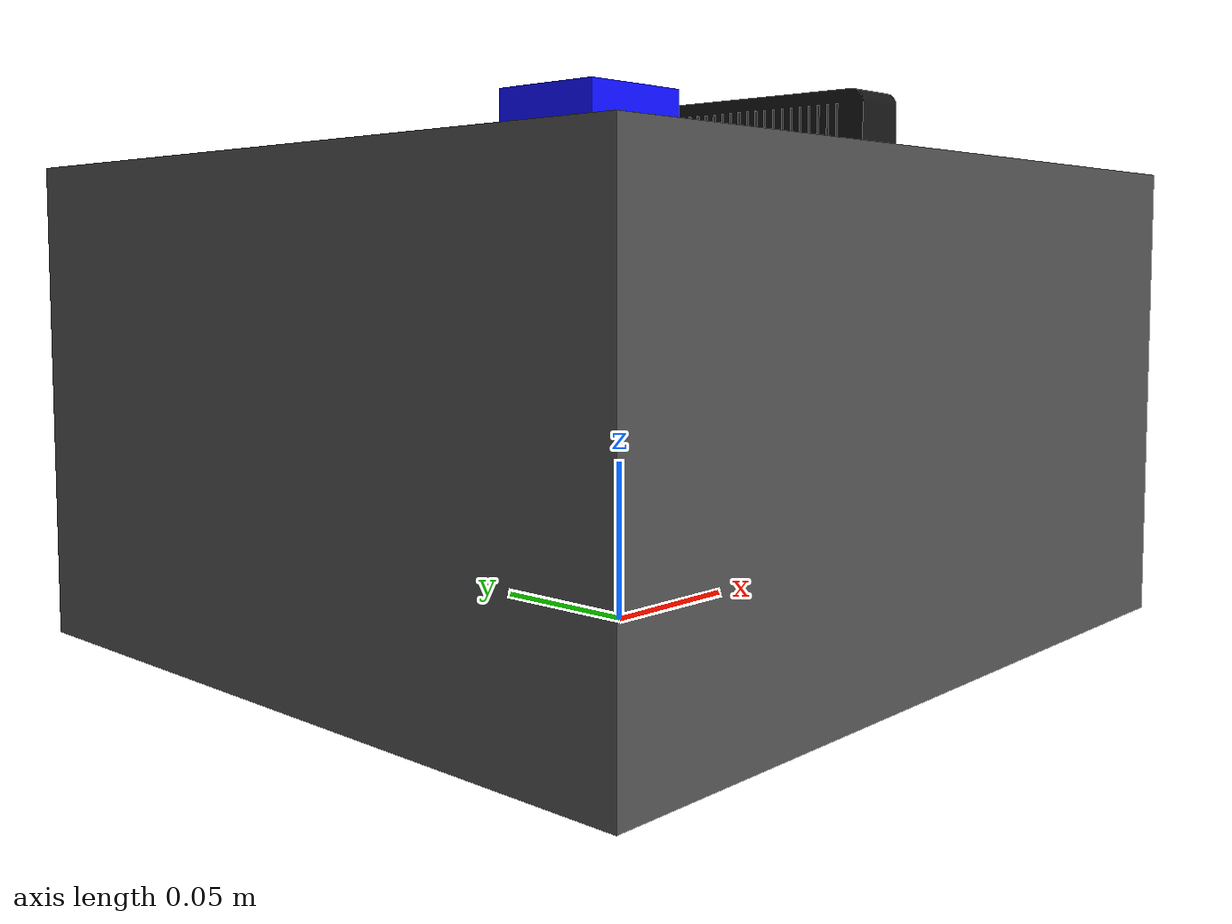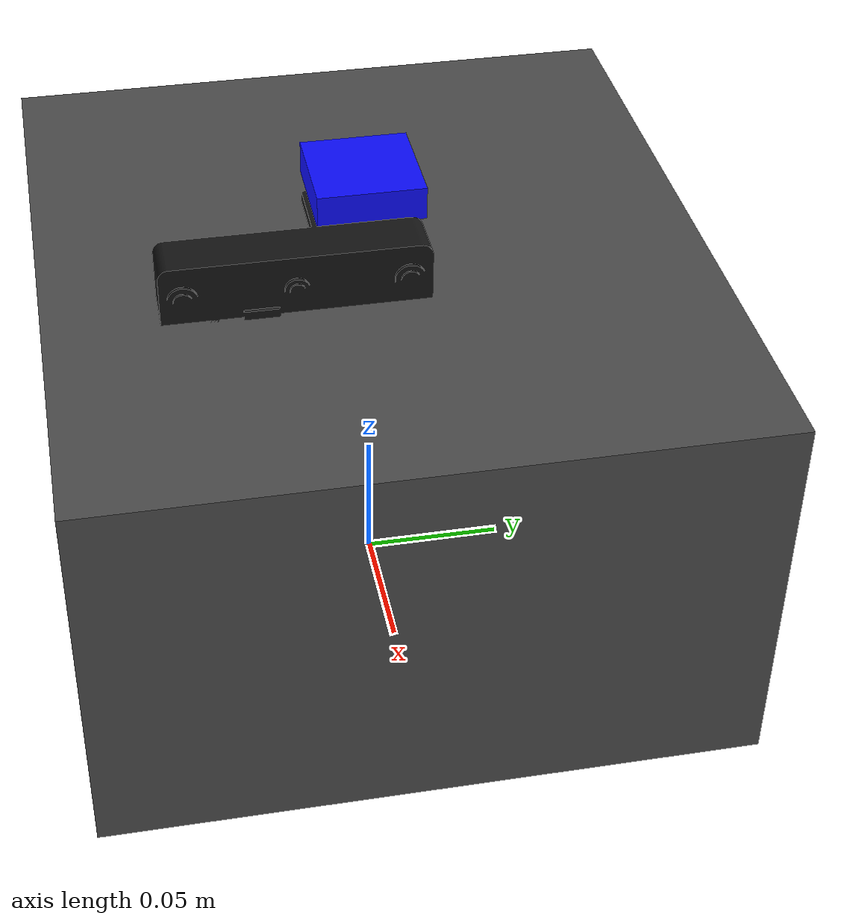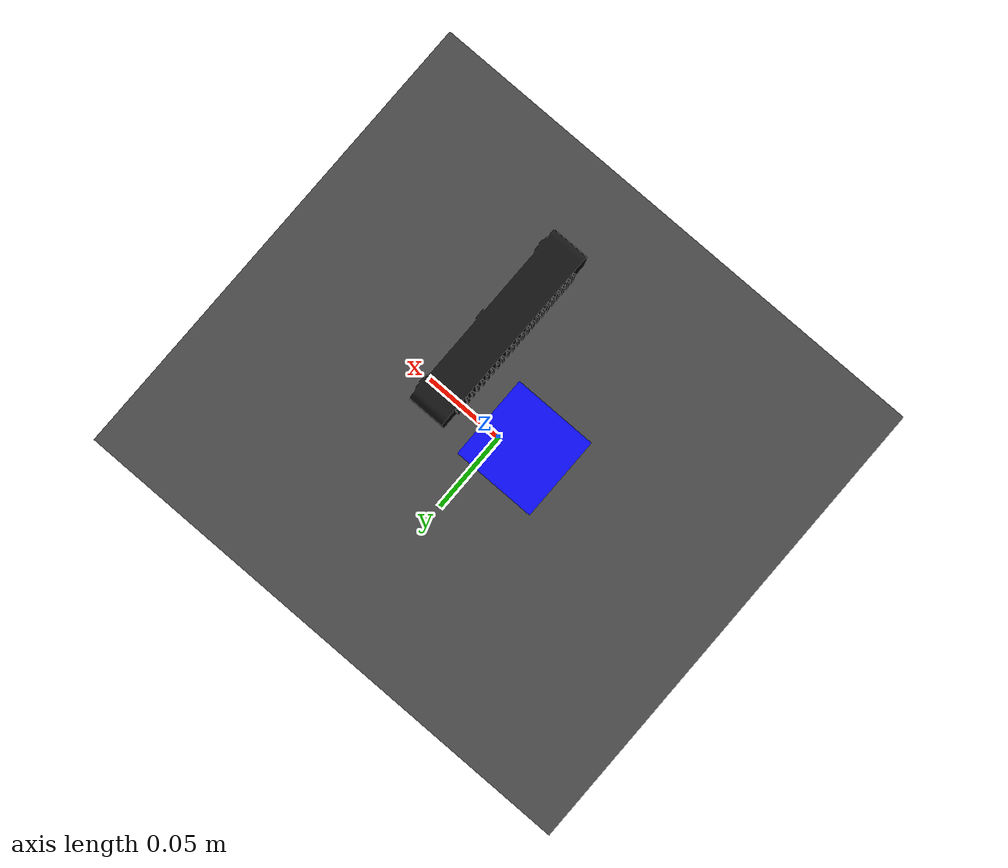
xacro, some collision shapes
<?xml version="1.0"?>
<robot name="mickrobot" xmlns:xacro="http://ros.org/wiki/xacro">

  <link name="base_footprint">
    <visual>
      <geometry>
        <sphere radius="0.001" />
      </geometry>
      <material name="invisible">
        <color rgba="0 0 0 0" />
      </material>
    </visual>
  </link>
  <joint name="base_joint" type="fixed">
    <parent link="base_footprint" />
    <child link="base_link" />
    <origin xyz="0 0 0" rpy="0 0 0" />
  </joint>
  <link name="top_payload_link">
    <visual>
      <origin xyz="0 0 0" rpy="0 0 0" />
      <geometry>
        <mesh filename="package://mickrobot_description/urdf/mesh/board_camera_radar_assembly.stl" scale="1 1 1" />
      </geometry>
      <material name="payload_dark">
        <color rgba="0.08 0.08 0.08 1" />
      </material>
    </visual>
    <collision>
      <origin xyz="0 0 0.0165" rpy="0 0 0" />
      <geometry>
        <box size="0.07 0.104 0.033" />
      </geometry>
    </collision>
    <inertial>
      <mass value="0.2" />
      <origin xyz="0 0 0.0165" rpy="0 0 0" />
      <inertia ixx="1e-4" ixy="0" ixz="0" iyy="1e-4" iyz="0" izz="1e-4" />
    </inertial>
  </link>
  <joint name="top_payload_joint" type="fixed">
    <parent link="base_link" />
    <child link="top_payload_link" />
    <origin xyz="0 0 0.128031" rpy="0 0 0" />
  </joint>
  <link name="base_link">
    <visual>
      <origin xyz="0 0 0.082" rpy="0 0 0" />
      <geometry>
        <mesh filename="package://mickrobot_description/urdf/mesh/ugv01_body.STL" scale="0.001 0.001 0.001" />
      </geometry>
      <material name="chassis_gray">
        <color rgba="0.3 0.3 0.3 1" />
      </material>
    </visual>
    <collision>
      <origin xyz="0 0 0.07" rpy="0 0 0" />
      <geometry>
        <box size="0.253 0.23 0.14" />
      </geometry>
    </collision>
    <inertial>
      <mass value="5" />
      <origin xyz="0 0 0.065" rpy="0 0 0" />
      <inertia ixx="0.02" ixy="0" ixz="0" iyy="0.03" iyz="0" izz="0.04" />
    </inertial>
  </link>
  <link name="right_back_wheel">
    <visual>
      <origin xyz="0 0 0" rpy="1.57079 0 0" />
      <geometry>
        <cylinder radius="0.04" length="0.03" />
      </geometry>
      <material name="wheel_black">
        <color rgba="0.1 0.1 0.1 1" />
      </material>
    </visual>
    <collision>
      <origin xyz="0 0 0" rpy="1.57079 0 0" />
      <geometry>
        <cylinder radius="0.04" length="0.03" />
      </geometry>
    </collision>
    <inertial>
      <mass value="0.5" />
      <origin xyz="0 0 0" rpy="1.57079 0 0" />
      <inertia ixx="0.00024" ixy="0" ixz="0" iyy="0.00024" iyz="0" izz="0.0004" />
    </inertial>
  </link>
  <joint name="right_back_wheel_joint" type="continuous">
    <axis xyz="0 1 0" />
    <parent link="base_link" />
    <child link="right_back_wheel" />
    <origin xyz="-0.086 -0.09 0.04" />
    <limit effort="100" velocity="100" />
    <dynamics damping="0.1" friction="0.05" />
  </joint>
  <link name="right_front_wheel">
    <visual>
      <origin xyz="0 0 0" rpy="1.57079 0 0" />
      <geometry>
        <cylinder radius="0.04" length="0.03" />
      </geometry>
      <material name="wheel_black">
        <color rgba="0.1 0.1 0.1 1" />
      </material>
    </visual>
    <collision>
      <origin xyz="0 0 0" rpy="1.57079 0 0" />
      <geometry>
        <cylinder radius="0.04" length="0.03" />
      </geometry>
    </collision>
    <inertial>
      <mass value="0.5" />
      <origin xyz="0 0 0" rpy="1.57079 0 0" />
      <inertia ixx="0.00024" ixy="0" ixz="0" iyy="0.00024" iyz="0" izz="0.0004" />
    </inertial>
  </link>
  <joint name="right_front_wheel_joint" type="continuous">
    <axis xyz="0 1 0" />
    <parent link="base_link" />
    <child link="right_front_wheel" />
    <origin xyz="0.086 -0.09 0.04" />
    <limit effort="100" velocity="100" />
    <dynamics damping="0.1" friction="0.05" />
  </joint>
  <link name="left_back_wheel">
    <visual>
      <origin xyz="0 0 0" rpy="1.57079 0 0" />
      <geometry>
        <cylinder radius="0.04" length="0.03" />
      </geometry>
      <material name="wheel_black">
        <color rgba="0.1 0.1 0.1 1" />
      </material>
    </visual>
    <collision>
      <origin xyz="0 0 0" rpy="1.57079 0 0" />
      <geometry>
        <cylinder radius="0.04" length="0.03" />
      </geometry>
    </collision>
    <inertial>
      <mass value="0.5" />
      <origin xyz="0 0 0" rpy="1.57079 0 0" />
      <inertia ixx="0.00024" ixy="0" ixz="0" iyy="0.00024" iyz="0" izz="0.0004" />
    </inertial>
  </link>
  <joint name="left_back_wheel_joint" type="continuous">
    <axis xyz="0 1 0" />
    <parent link="base_link" />
    <child link="left_back_wheel" />
    <origin xyz="-0.086 0.09 0.04" />
    <limit effort="100" velocity="100" />
    <dynamics damping="0.1" friction="0.05" />
  </joint>
  <link name="left_front_wheel">
    <visual>
      <origin xyz="0 0 0" rpy="1.57079 0 0" />
      <geometry>
        <cylinder radius="0.04" length="0.03" />
      </geometry>
      <material name="wheel_black">
        <color rgba="0.1 0.1 0.1 1" />
      </material>
    </visual>
    <collision>
      <origin xyz="0 0 0" rpy="1.57079 0 0" />
      <geometry>
        <cylinder radius="0.04" length="0.03" />
      </geometry>
    </collision>
    <inertial>
      <mass value="0.5" />
      <origin xyz="0 0 0" rpy="1.57079 0 0" />
      <inertia ixx="0.00024" ixy="0" ixz="0" iyy="0.00024" iyz="0" izz="0.0004" />
    </inertial>
  </link>
  <joint name="left_front_wheel_joint" type="continuous">
    <axis xyz="0 1 0" />
    <parent link="base_link" />
    <child link="left_front_wheel" />
    <origin xyz="0.086 0.09 0.04" />
    <limit effort="100" velocity="100" />
    <dynamics damping="0.1" friction="0.05" />
  </joint>
  <link name="right_mid_wheel">
    <visual>
      <origin xyz="0 0 0" rpy="1.57079 0 0" />
      <geometry>
        <cylinder radius="0.04" length="0.03" />
      </geometry>
      <material name="wheel_black">
        <color rgba="0.1 0.1 0.1 1" />
      </material>
    </visual>
    <collision>
      <origin xyz="0 0 0" rpy="1.57079 0 0" />
      <geometry>
        <cylinder radius="0.04" length="0.03" />
      </geometry>
    </collision>
    <inertial>
      <mass value="0.5" />
      <origin xyz="0 0 0" rpy="1.57079 0 0" />
      <inertia ixx="0.00024" ixy="0" ixz="0" iyy="0.00024" iyz="0" izz="0.0004" />
    </inertial>
  </link>
  <joint name="right_mid_wheel_joint" type="continuous">
    <axis xyz="0 1 0" />
    <parent link="base_link" />
    <child link="right_mid_wheel" />
    <origin xyz="0.000 -0.09 0.04" />
    <limit effort="100" velocity="100" />
    <dynamics damping="0.05" friction="0.02" />
  </joint>
  <link name="left_mid_wheel">
    <visual>
      <origin xyz="0 0 0" rpy="1.57079 0 0" />
      <geometry>
        <cylinder radius="0.04" length="0.03" />
      </geometry>
      <material name="wheel_black">
        <color rgba="0.1 0.1 0.1 1" />
      </material>
    </visual>
    <collision>
      <origin xyz="0 0 0" rpy="1.57079 0 0" />
      <geometry>
        <cylinder radius="0.04" length="0.03" />
      </geometry>
    </collision>
    <inertial>
      <mass value="0.5" />
      <origin xyz="0 0 0" rpy="1.57079 0 0" />
      <inertia ixx="0.00024" ixy="0" ixz="0" iyy="0.00024" iyz="0" izz="0.0004" />
    </inertial>
  </link>
  <joint name="left_mid_wheel_joint" type="continuous">
    <axis xyz="0 1 0" />
    <parent link="base_link" />
    <child link="left_mid_wheel" />
    <origin xyz="0.000 0.09 0.04" />
    <limit effort="100" velocity="100" />
    <dynamics damping="0.05" friction="0.02" />
  </joint>
  <link name="imu_link">
    <visual>
      <geometry>
        <box size="0.04 0.04 0.015" />
      </geometry>
    </visual>
    <collision>
      <geometry>
        <box size="0.04 0.04 0.015" />
      </geometry>
    </collision>
    <inertial>
      <mass value="0.1" />
      <inertia ixx="3.333e-6" ixy="0" ixz="0" iyy="3.333e-6" iyz="0" izz="3.333e-6" />
    </inertial>
  </link>
  <joint name="imu_joint" type="fixed">
    <parent link="base_link" />
    <child link="imu_link" />
    <origin xyz="0 0 0.09" rpy="0 0 0" />
  </joint>
  <link name="laser_link">
    <visual>
      <origin xyz="0 0 0" rpy="0 0 0" />
      <geometry>
        <box size="0.038 0.038 0.012" />
      </geometry>
      <material name="lidar_base_blue">
        <color rgba="0.05 0.05 1.0 1" />
      </material>
    </visual>
    <collision>
      <origin xyz="0 0 0" rpy="0 0 0" />
      <geometry>
        <box size="0.038 0.038 0.012" />
      </geometry>
    </collision>
    <inertial>
      <mass value="0.2" />
      <inertia ixx="3.333e-5" ixy="0" ixz="0" iyy="3.333e-5" iyz="0" izz="3.333e-5" />
    </inertial>
  </link>
  <joint name="laser_joint" type="fixed">
    <parent link="base_link" />
    <child link="laser_link" />
    <origin xyz="-0.0135 0 0.158031" rpy="0 0 0" />
  </joint>
  <link name="camera_left_link">
    <visual>
      <origin xyz="0 0 0" rpy="0 0 0" />
      <geometry>
        <box size="0.001 0.001 0.001" />
      </geometry>
      <material name="sensor_frame_invisible">
        <color rgba="0 0 0 0" />
      </material>
    </visual>
    <collision>
      <origin xyz="0 0 0" rpy="0 0 0" />
      <geometry>
        <box size="0.001 0.001 0.001" />
      </geometry>
    </collision>
    <inertial>
      <mass value="0.001" />
      <inertia ixx="1e-9" ixy="0" ixz="0" iyy="1e-9" iyz="0" izz="1e-9" />
    </inertial>
  </link>
  <joint name="camera_left_joint" type="fixed">
    <parent link="base_link" />
    <child link="camera_left_link" />
    <origin xyz="0.0357 0.007274 0.149031" rpy="0 0 0" />
  </joint>
  <link name="camera_rgb_link">
    <visual>
      <origin xyz="0 0 0" rpy="0 0 0" />
      <geometry>
        <box size="0.001 0.001 0.001" />
      </geometry>
      <material name="sensor_frame_invisible">
        <color rgba="0 0 0 0" />
      </material>
    </visual>
    <collision>
      <origin xyz="0 0 0" rpy="0 0 0" />
      <geometry>
        <box size="0.001 0.001 0.001" />
      </geometry>
    </collision>
    <inertial>
      <mass value="0.001" />
      <inertia ixx="1e-9" ixy="0" ixz="0" iyy="1e-9" iyz="0" izz="1e-9" />
    </inertial>
  </link>
  <joint name="camera_rgb_joint" type="fixed">
    <parent link="base_link" />
    <child link="camera_rgb_link" />
    <origin xyz="0.0357 -0.0305 0.149031" rpy="0 0 0" />
  </joint>
  <link name="camera_imu_link">
    <visual>
      <geometry>
        <box size="0.001 0.001 0.001" />
      </geometry>
      <material name="sensor_frame_invisible">
        <color rgba="0 0 0 0" />
      </material>
    </visual>
    <inertial>
      <mass value="0.001" />
      <inertia ixx="1e-9" ixy="0" ixz="0" iyy="1e-9" iyz="0" izz="1e-9" />
    </inertial>
  </link>
  <joint name="camera_imu_joint" type="fixed">
    <parent link="camera_rgb_link" />
    <child link="camera_imu_link" />
    <origin xyz="0 0 0" rpy="0 0 0" />
  </joint>
  <link name="camera_right_link">
    <visual>
      <origin xyz="0 0 0" rpy="0 0 0" />
      <geometry>
        <box size="0.001 0.001 0.001" />
      </geometry>
      <material name="sensor_frame_invisible">
        <color rgba="0 0 0 0" />
      </material>
    </visual>
    <collision>
      <origin xyz="0 0 0" rpy="0 0 0" />
      <geometry>
        <box size="0.001 0.001 0.001" />
      </geometry>
    </collision>
    <inertial>
      <mass value="0.001" />
      <inertia ixx="1e-9" ixy="0" ixz="0" iyy="1e-9" iyz="0" izz="1e-9" />
    </inertial>
  </link>
  <joint name="camera_right_joint" type="fixed">
    <parent link="base_link" />
    <child link="camera_right_link" />
    <origin xyz="0.0357 -0.068274 0.149031" rpy="0 0 0" />
  </joint>

  <!-- [Humble迁移] 以下 Gazebo Sim (gz-sim) 插件仅用于 Ubuntu 24.04 + Jazzy -->
  <!-- ==================== Gazebo 插件 ==================== -->

  <!-- 轮子摩擦系数 + fdir1 显式指定摩擦方向 -->
  <!-- fdir1="1 0 0" = 轮子 link 局部 X 轴 = 滚动方向（跟随车身旋转） -->
  <!-- mu1(滚动方向)=高摩擦保证抓地, mu2(侧向)=低摩擦允许差速转向 -->
  <gazebo reference="left_front_wheel">
    <mu1>1.5</mu1>
    <mu2>0.3</mu2>
    <fdir1>1 0 0</fdir1>
  </gazebo>
  <gazebo reference="right_front_wheel">
    <mu1>1.5</mu1>
    <mu2>0.3</mu2>
    <fdir1>1 0 0</fdir1>
  </gazebo>
  <gazebo reference="left_back_wheel">
    <mu1>1.5</mu1>
    <mu2>0.3</mu2>
    <fdir1>1 0 0</fdir1>
  </gazebo>
  <gazebo reference="right_back_wheel">
    <mu1>1.5</mu1>
    <mu2>0.3</mu2>
    <fdir1>1 0 0</fdir1>
  </gazebo>
  <!-- 中轮 - 各向同性极低摩擦（不需要 fdir1） -->
  <gazebo reference="left_mid_wheel">
    <mu1>0.05</mu1>
    <mu2>0.05</mu2>
  </gazebo>
  <gazebo reference="right_mid_wheel">
    <mu1>0.05</mu1>
    <mu2>0.05</mu2>
  </gazebo>

  <!-- 差速驱动插件（全6轮驱动） -->
  <gazebo>
    <plugin filename="gz-sim-diff-drive-system" name="gz::sim::systems::DiffDrive">
      <left_joint>left_front_wheel_joint</left_joint>
      <left_joint>left_mid_wheel_joint</left_joint>
      <left_joint>left_back_wheel_joint</left_joint>
      <right_joint>right_front_wheel_joint</right_joint>
      <right_joint>right_mid_wheel_joint</right_joint>
      <right_joint>right_back_wheel_joint</right_joint>

      <!-- 运动学参数 -->
      <wheel_separation>0.18</wheel_separation>
      <wheel_radius>0.04</wheel_radius>

      <!-- 限制 -->
      <max_linear_acceleration>2.0</max_linear_acceleration>
      <max_angular_acceleration>3.0</max_angular_acceleration>

      <!-- 话题 -->
      <topic>cmd_vel</topic>
      <odom_topic>odom</odom_topic>
      <tf_topic>odom_tf_unused</tf_topic>
      <frame_id>odom</frame_id>
      <child_frame_id>base_footprint</child_frame_id>
      <odom_publish_frequency>30</odom_publish_frequency>
    </plugin>

    <plugin filename="gz-sim-odometry-publisher-system" name="gz::sim::systems::OdometryPublisher">
      <odom_frame>odom</odom_frame>
      <robot_base_frame>base_footprint</robot_base_frame>
      <odom_publish_frequency>30</odom_publish_frequency>
      <odom_topic>ground_truth/odom</odom_topic>
      <tf_topic>ground_truth_tf_unused</tf_topic>
      <dimensions>2</dimensions>
    </plugin>

    <!-- 关节状态发布 -->
    <plugin filename="gz-sim-joint-state-publisher-system" name="gz::sim::systems::JointStatePublisher">
      <topic>joint_states</topic>
    </plugin>
  </gazebo>

  <!-- IMU 传感器插件（底盘） -->
  <gazebo reference="imu_link">
    <sensor name="imu_sensor" type="imu">
      <always_on>true</always_on>
      <update_rate>100</update_rate>
      <visualize>true</visualize>
      <topic>imu/data</topic>
      <gz_frame_id>imu_link</gz_frame_id>
    </sensor>
  </gazebo>

  <!-- OAK 模组内置 IMU -->
  <gazebo reference="camera_imu_link">
    <sensor name="camera_imu_sensor" type="imu">
      <always_on>true</always_on>
      <update_rate>100</update_rate>
      <visualize>false</visualize>
      <topic>camera/imu/data</topic>
      <gz_frame_id>camera_imu_link</gz_frame_id>
    </sensor>
  </gazebo>

  <!-- 左目摄像头插件 -->
  <gazebo reference="camera_left_link">
    <sensor name="camera_left_sensor" type="camera">
      <always_on>true</always_on>
      <update_rate>30</update_rate>
      <visualize>true</visualize>
      <topic>camera/left/image_raw</topic>
      <gz_frame_id>camera_left_link</gz_frame_id>
      <camera>
        <horizontal_fov>1.047</horizontal_fov>
        <image>
          <width>640</width>
          <height>480</height>
          <format>R8G8B8</format>
        </image>
        <clip>
          <near>0.1</near>
          <far>100</far>
        </clip>
      </camera>
    </sensor>
  </gazebo>

  <!-- 右目摄像头插件 -->
  <gazebo reference="camera_right_link">
    <sensor name="camera_right_sensor" type="camera">
      <always_on>true</always_on>
      <update_rate>30</update_rate>
      <visualize>true</visualize>
      <topic>camera/right/image_raw</topic>
      <gz_frame_id>camera_right_link</gz_frame_id>
      <camera>
        <horizontal_fov>1.047</horizontal_fov>
        <image>
          <width>640</width>
          <height>480</height>
          <format>R8G8B8</format>
        </image>
        <clip>
          <near>0.1</near>
          <far>100</far>
        </clip>
      </camera>
    </sensor>
  </gazebo>

  <!-- 2D 激光雷达插件 -->
  <gazebo reference="laser_link">
    <material>Gazebo/Blue</material>
    <sensor name="lidar" type="gpu_lidar">
      <pose>0 0 0.03 0 0 0</pose>
      <always_on>true</always_on>
      <visualize>true</visualize>
      <update_rate>10</update_rate>
      <topic>scan</topic>
      <gz_frame_id>laser_link</gz_frame_id>
      <ray>
        <scan>
          <horizontal>
            <samples>360</samples>
            <resolution>1</resolution>
            <min_angle>-3.14159</min_angle>
            <max_angle>3.14159</max_angle>
          </horizontal>
        </scan>
        <range>
          <min>0.12</min>
          <max>12.0</max>
          <resolution>0.01</resolution>
        </range>
      </ray>
    </sensor>
  </gazebo>

</robot>
